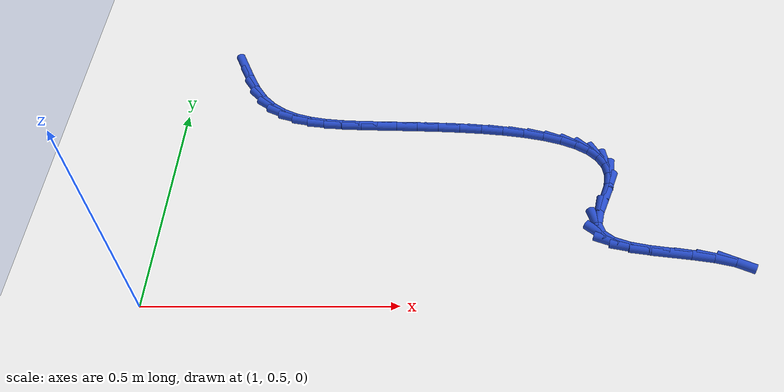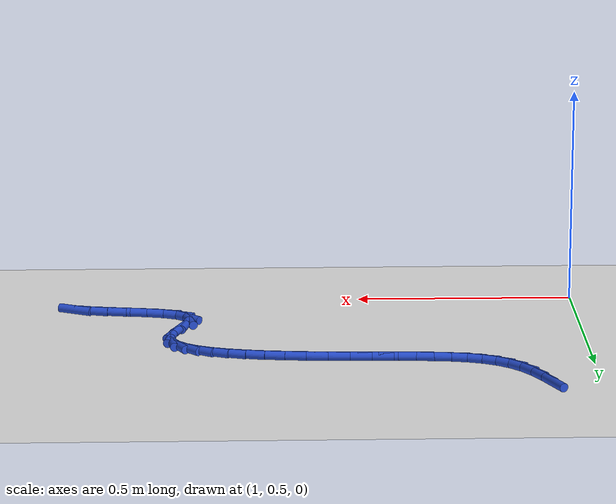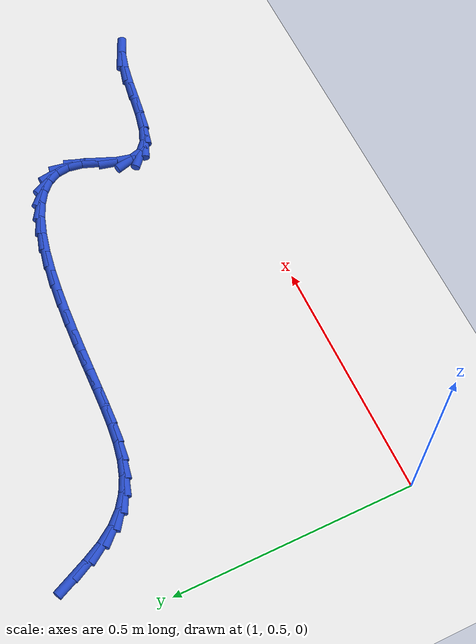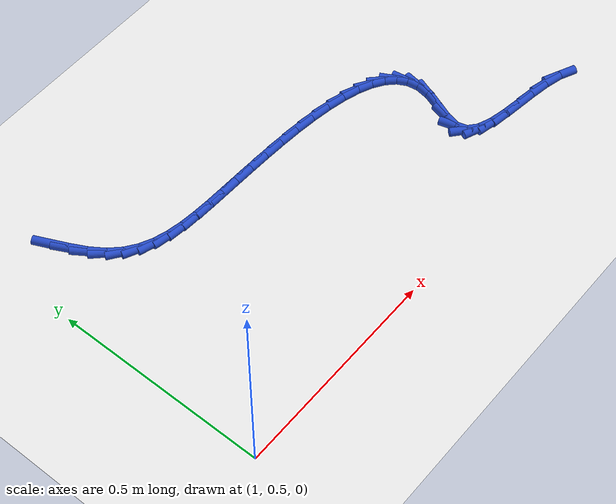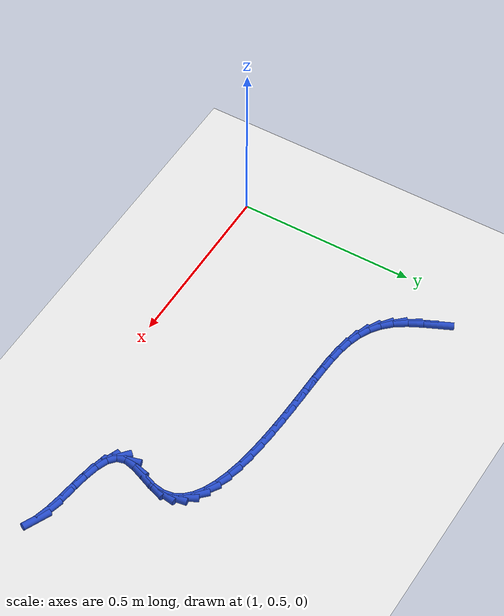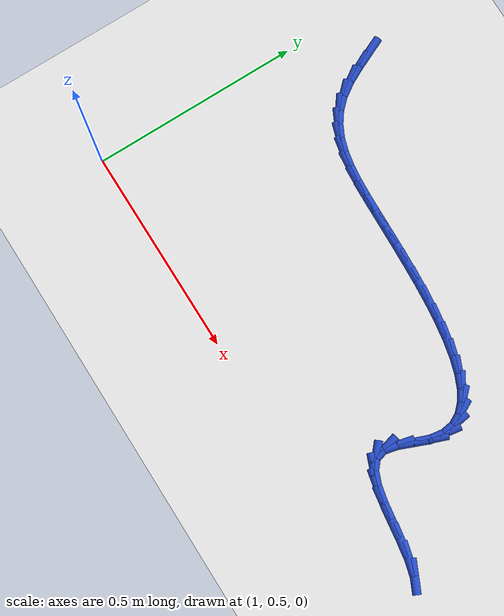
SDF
<sdf version="1.6">
 <world name="default">
  <model name="ground_plane">
   <static>1</static>
   <link name="link">
    <collision name="collision">
     <geometry><plane><normal>0 0 1</normal><size>100 100</size></plane></geometry>
     <surface><friction><ode><mu>100</mu><mu2>50</mu2></ode></friction></surface>
    </collision>
    <visual name="visual">
     <cast_shadows>0</cast_shadows>
     <geometry><plane><normal>0 0 1</normal><size>100 100</size></plane></geometry>
     <material>
      <script><uri>file://media/materials/scripts/gazebo.material</uri><name>Gazebo/WhiteGlow</name></script>
     </material>
    </visual>
   </link>
  </model>
  <model name="line">
   <link name="link_52">
    <pose>1.1068296771240524 1.1535958515805331 0.01 0 1.57 -1.1399647260535226</pose>
    <collision name="collision">
     <geometry><cylinder><radius>0.01</radius><length>0.08</length></cylinder></geometry>
    </collision>
    <visual name="visual">
     <material>
      <script><name>Gazebo/Blue</name><uri>file://media/materials/scripts/gazebo.material</uri></script>
     </material>
     <geometry><cylinder><radius>0.01</radius><length>0.08</length></cylinder></geometry>
    </visual>
   </link>
   <link name="link_53">
    <pose>1.124045474171045 1.1161399089975614 0.01 0 1.57 -1.0946465420658669</pose>
    <collision name="collision">
     <geometry><cylinder><radius>0.01</radius><length>0.08</length></cylinder></geometry>
    </collision>
    <visual name="visual">
     <material>
      <script><name>Gazebo/Blue</name><uri>file://media/materials/scripts/gazebo.material</uri></script>
     </material>
     <geometry><cylinder><radius>0.01</radius><length>0.08</length></cylinder></geometry>
    </visual>
   </link>
   <link name="link_54">
    <pose>1.143174898259593 1.079047746496133 0.01 0 1.57 -0.9745898468676989</pose>
    <collision name="collision">
     <geometry><cylinder><radius>0.01</radius><length>0.08</length></cylinder></geometry>
    </collision>
    <visual name="visual">
     <material>
      <script><name>Gazebo/Blue</name><uri>file://media/materials/scripts/gazebo.material</uri></script>
     </material>
     <geometry><cylinder><radius>0.01</radius><length>0.08</length></cylinder></geometry>
    </visual>
   </link>
   <link name="link_55">
    <pose>1.1648346772784155 1.0471285763058709 0.01 0 1.57 -0.803147359494654</pose>
    <collision name="collision">
     <geometry><cylinder><radius>0.01</radius><length>0.08</length></cylinder></geometry>
    </collision>
    <visual name="visual">
     <material>
      <script><name>Gazebo/Blue</name><uri>file://media/materials/scripts/gazebo.material</uri></script>
     </material>
     <geometry><cylinder><radius>0.01</radius><length>0.08</length></cylinder></geometry>
    </visual>
   </link>
   <link name="link_56">
    <pose>1.1892595998306017 1.0218208464468965 0.01 0 1.57 -0.6217404524278279</pose>
    <collision name="collision">
     <geometry><cylinder><radius>0.01</radius><length>0.08</length></cylinder></geometry>
    </collision>
    <visual name="visual">
     <material>
      <script><name>Gazebo/Blue</name><uri>file://media/materials/scripts/gazebo.material</uri></script>
     </material>
     <geometry><cylinder><radius>0.01</radius><length>0.08</length></cylinder></geometry>
    </visual>
   </link>
   <link name="link_57">
    <pose>1.2164336502059765 1.0023495583666935 0.01 0 1.57 -0.4501037662684579</pose>
    <collision name="collision">
     <geometry><cylinder><radius>0.01</radius><length>0.08</length></cylinder></geometry>
    </collision>
    <visual name="visual">
     <material>
      <script><name>Gazebo/Blue</name><uri>file://media/materials/scripts/gazebo.material</uri></script>
     </material>
     <geometry><cylinder><radius>0.01</radius><length>0.08</length></cylinder></geometry>
    </visual>
   </link>
   <link name="link_58">
    <pose>1.2463364308023117 0.987901041594314 0.01 0 1.57 -0.30423761250381726</pose>
    <collision name="collision">
     <geometry><cylinder><radius>0.01</radius><length>0.08</length></cylinder></geometry>
    </collision>
    <visual name="visual">
     <material>
      <script><name>Gazebo/Blue</name><uri>file://media/materials/scripts/gazebo.material</uri></script>
     </material>
     <geometry><cylinder><radius>0.01</radius><length>0.08</length></cylinder></geometry>
    </visual>
   </link>
   <link name="link_59">
    <pose>1.2789475440173814 0.9776616256588098 0.01 0 1.57 -0.191509705843064</pose>
    <collision name="collision">
     <geometry><cylinder><radius>0.01</radius><length>0.08</length></cylinder></geometry>
    </collision>
    <visual name="visual">
     <material>
      <script><name>Gazebo/Blue</name><uri>file://media/materials/scripts/gazebo.material</uri></script>
     </material>
     <geometry><cylinder><radius>0.01</radius><length>0.08</length></cylinder></geometry>
    </visual>
   </link>
   <link name="link_60">
    <pose>1.3142465922489568 0.970817640089233 0.01 0 1.57 -0.11179447274638207</pose>
    <collision name="collision">
     <geometry><cylinder><radius>0.01</radius><length>0.08</length></cylinder></geometry>
    </collision>
    <visual name="visual">
     <material>
      <script><name>Gazebo/Blue</name><uri>file://media/materials/scripts/gazebo.material</uri></script>
     </material>
     <geometry><cylinder><radius>0.01</radius><length>0.08</length></cylinder></geometry>
    </visual>
   </link>
   <link name="link_61">
    <pose>1.352213177894812 0.9665554144146358 0.01 0 1.57 -0.06133413996050201</pose>
    <collision name="collision">
     <geometry><cylinder><radius>0.01</radius><length>0.08</length></cylinder></geometry>
    </collision>
    <visual name="visual">
     <material>
      <script><name>Gazebo/Blue</name><uri>file://media/materials/scripts/gazebo.material</uri></script>
     </material>
     <geometry><cylinder><radius>0.01</radius><length>0.08</length></cylinder></geometry>
    </visual>
   </link>
   <link name="link_62">
    <pose>1.3928269033527187 0.9640612781640698 0.01 0 1.57 -0.03559320967096441</pose>
    <collision name="collision">
     <geometry><cylinder><radius>0.01</radius><length>0.08</length></cylinder></geometry>
    </collision>
    <visual name="visual">
     <material>
      <script><name>Gazebo/Blue</name><uri>file://media/materials/scripts/gazebo.material</uri></script>
     </material>
     <geometry><cylinder><radius>0.01</radius><length>0.08</length></cylinder></geometry>
    </visual>
   </link>
   <link name="link_63">
    <pose>1.4360673710204508 0.9625215608665874 0.01 0 1.57 -0.02899583581267326</pose>
    <collision name="collision">
     <geometry><cylinder><radius>0.01</radius><length>0.08</length></cylinder></geometry>
    </collision>
    <visual name="visual">
     <material>
      <script><name>Gazebo/Blue</name><uri>file://media/materials/scripts/gazebo.material</uri></script>
     </material>
     <geometry><cylinder><radius>0.01</radius><length>0.08</length></cylinder></geometry>
    </visual>
   </link>
   <link name="link_64">
    <pose>1.481798892920301 0.9611951654191987 0.01 0 1.57 -0.03181918137966791</pose>
    <collision name="collision">
     <geometry><cylinder><radius>0.01</radius><length>0.08</length></cylinder></geometry>
    </collision>
    <visual name="visual">
     <material>
      <script><name>Gazebo/Blue</name><uri>file://media/materials/scripts/gazebo.material</uri></script>
     </material>
     <geometry><cylinder><radius>0.01</radius><length>0.08</length></cylinder></geometry>
    </visual>
   </link>
   <link name="link_65">
    <pose>1.5293443825058572 0.9596817960856887 0.01 0 1.57 -0.0412079252949086</pose>
    <collision name="collision">
     <geometry><cylinder><radius>0.01</radius><length>0.08</length></cylinder></geometry>
    </collision>
    <visual name="visual">
     <material>
      <script><name>Gazebo/Blue</name><uri>file://media/materials/scripts/gazebo.material</uri></script>
     </material>
     <geometry><cylinder><radius>0.01</radius><length>0.08</length></cylinder></geometry>
    </visual>
   </link>
   <link name="link_66">
    <pose>1.577867972358921 0.9576811070396687 0.01 0 1.57 -0.057233134213137825</pose>
    <collision name="collision">
     <geometry><cylinder><radius>0.01</radius><length>0.08</length></cylinder></geometry>
    </collision>
    <visual name="visual">
     <material>
      <script><name>Gazebo/Blue</name><uri>file://media/materials/scripts/gazebo.material</uri></script>
     </material>
     <geometry><cylinder><radius>0.01</radius><length>0.08</length></cylinder></geometry>
    </visual>
   </link>
   <link name="link_67">
    <pose>1.62653377438693 0.9548927654689172 0.01 0 1.57 -0.08062855713013198</pose>
    <collision name="collision">
     <geometry><cylinder><radius>0.01</radius><length>0.08</length></cylinder></geometry>
    </collision>
    <visual name="visual">
     <material>
      <script><name>Gazebo/Blue</name><uri>file://media/materials/scripts/gazebo.material</uri></script>
     </material>
     <geometry><cylinder><radius>0.01</radius><length>0.08</length></cylinder></geometry>
    </visual>
   </link>
   <link name="link_68">
    <pose>1.674505900497321 0.9510164385612124 0.01 0 1.57 -0.11287635162903507</pose>
    <collision name="collision">
     <geometry><cylinder><radius>0.01</radius><length>0.08</length></cylinder></geometry>
    </collision>
    <visual name="visual">
     <material>
      <script><name>Gazebo/Blue</name><uri>file://media/materials/scripts/gazebo.material</uri></script>
     </material>
     <geometry><cylinder><radius>0.01</radius><length>0.08</length></cylinder></geometry>
    </visual>
   </link>
   <link name="link_69">
    <pose>1.7209484625975309 0.9457517935043331 0.01 0 1.57 -0.15646357779761397</pose>
    <collision name="collision">
     <geometry><cylinder><radius>0.01</radius><length>0.08</length></cylinder></geometry>
    </collision>
    <visual name="visual">
     <material>
      <script><name>Gazebo/Blue</name><uri>file://media/materials/scripts/gazebo.material</uri></script>
     </material>
     <geometry><cylinder><radius>0.01</radius><length>0.08</length></cylinder></geometry>
    </visual>
   </link>
   <link name="link_70">
    <pose>1.7650255725949981 0.9387984974860576 0.01 0 1.57 -0.21537416284267957</pose>
    <collision name="collision">
     <geometry><cylinder><radius>0.01</radius><length>0.08</length></cylinder></geometry>
    </collision>
    <visual name="visual">
     <material>
      <script><name>Gazebo/Blue</name><uri>file://media/materials/scripts/gazebo.material</uri></script>
     </material>
     <geometry><cylinder><radius>0.01</radius><length>0.08</length></cylinder></geometry>
    </visual>
   </link>
   <link name="link_71">
    <pose>1.805901342397158 0.9298562176941642 0.01 0 1.57 -0.295934327029937</pose>
    <collision name="collision">
     <geometry><cylinder><radius>0.01</radius><length>0.08</length></cylinder></geometry>
    </collision>
    <visual name="visual">
     <material>
      <script><name>Gazebo/Blue</name><uri>file://media/materials/scripts/gazebo.material</uri></script>
     </material>
     <geometry><cylinder><radius>0.01</radius><length>0.08</length></cylinder></geometry>
    </visual>
   </link>
   <link name="link_72">
    <pose>1.8427398839114497 0.9186246213164315 0.01 0 1.57 -0.40810585983567776</pose>
    <collision name="collision">
     <geometry><cylinder><radius>0.01</radius><length>0.08</length></cylinder></geometry>
    </collision>
    <visual name="visual">
     <material>
      <script><name>Gazebo/Blue</name><uri>file://media/materials/scripts/gazebo.material</uri></script>
     </material>
     <geometry><cylinder><radius>0.01</radius><length>0.08</length></cylinder></geometry>
    </visual>
   </link>
   <link name="link_73">
    <pose>1.8747053090453087 0.904803375540638 0.01 0 1.57 -0.5667996050922918</pose>
    <collision name="collision">
     <geometry><cylinder><radius>0.01</radius><length>0.08</length></cylinder></geometry>
    </collision>
    <visual name="visual">
     <material>
      <script><name>Gazebo/Blue</name><uri>file://media/materials/scripts/gazebo.material</uri></script>
     </material>
     <geometry><cylinder><radius>0.01</radius><length>0.08</length></cylinder></geometry>
    </visual>
   </link>
   <link name="link_74">
    <pose>1.9009617297061736 0.8880921475545621 0.01 0 1.57 -0.7901948996929119</pose>
    <collision name="collision">
     <geometry><cylinder><radius>0.01</radius><length>0.08</length></cylinder></geometry>
    </collision>
    <visual name="visual">
     <material>
      <script><name>Gazebo/Blue</name><uri>file://media/materials/scripts/gazebo.material</uri></script>
     </material>
     <geometry><cylinder><radius>0.01</radius><length>0.08</length></cylinder></geometry>
    </visual>
   </link>
   <link name="link_75">
    <pose>1.9206732578014813 0.8681906045459826 0.01 0 1.57 -1.085680287643788</pose>
    <collision name="collision">
     <geometry><cylinder><radius>0.01</radius><length>0.08</length></cylinder></geometry>
    </collision>
    <visual name="visual">
     <material>
      <script><name>Gazebo/Blue</name><uri>file://media/materials/scripts/gazebo.material</uri></script>
     </material>
     <geometry><cylinder><radius>0.01</radius><length>0.08</length></cylinder></geometry>
    </visual>
   </link>
   <link name="link_76">
    <pose>1.9330040052386683 0.8447984137026773 0.01 0 1.57 -1.4205897400191951</pose>
    <collision name="collision">
     <geometry><cylinder><radius>0.01</radius><length>0.08</length></cylinder></geometry>
    </collision>
    <visual name="visual">
     <material>
      <script><name>Gazebo/Blue</name><uri>file://media/materials/scripts/gazebo.material</uri></script>
     </material>
     <geometry><cylinder><radius>0.01</radius><length>0.08</length></cylinder></geometry>
    </visual>
   </link>
   <link name="link_77">
    <pose>1.9371180839251725 0.8176152422124251 0.01 0 1.57 1.4141911830292309</pose>
    <collision name="collision">
     <geometry><cylinder><radius>0.01</radius><length>0.08</length></cylinder></geometry>
    </collision>
    <visual name="visual">
     <material>
      <script><name>Gazebo/Blue</name><uri>file://media/materials/scripts/gazebo.material</uri></script>
     </material>
     <geometry><cylinder><radius>0.01</radius><length>0.08</length></cylinder></geometry>
    </visual>
   </link>
   <link name="link_78">
    <pose>1.9321799264135198 0.7863409078249171 0.01 0 1.57 1.2125164082445472</pose>
    <collision name="collision">
     <geometry><cylinder><radius>0.01</radius><length>0.08</length></cylinder></geometry>
    </collision>
    <visual name="visual">
     <material>
      <script><name>Gazebo/Blue</name><uri>file://media/materials/scripts/gazebo.material</uri></script>
     </material>
     <geometry><cylinder><radius>0.01</radius><length>0.08</length></cylinder></geometry>
    </visual>
   </link>
   <link name="link_79">
    <pose>1.919139128137144 0.7515134682872507 0.01 0 1.57 1.1852236447687536</pose>
    <collision name="collision">
     <geometry><cylinder><radius>0.01</radius><length>0.08</length></cylinder></geometry>
    </collision>
    <visual name="visual">
     <material>
      <script><name>Gazebo/Blue</name><uri>file://media/materials/scripts/gazebo.material</uri></script>
     </material>
     <geometry><cylinder><radius>0.01</radius><length>0.08</length></cylinder></geometry>
    </visual>
   </link>
   <link name="link_80">
    <pose>1.9049175260118971 0.716475303427305 0.01 0 1.57 1.343838760808624</pose>
    <collision name="collision">
     <geometry><cylinder><radius>0.01</radius><length>0.08</length></cylinder></geometry>
    </collision>
    <visual name="visual">
     <material>
      <script><name>Gazebo/Blue</name><uri>file://media/materials/scripts/gazebo.material</uri></script>
     </material>
     <geometry><cylinder><radius>0.01</radius><length>0.08</length></cylinder></geometry>
    </visual>
   </link>
   <link name="link_81">
    <pose>1.8976844244732238 0.6851545531632973 0.01 0 1.57 -1.3001773517629749</pose>
    <collision name="collision">
     <geometry><cylinder><radius>0.01</radius><length>0.08</length></cylinder></geometry>
    </collision>
    <visual name="visual">
     <material>
      <script><name>Gazebo/Blue</name><uri>file://media/materials/scripts/gazebo.material</uri></script>
     </material>
     <geometry><cylinder><radius>0.01</radius><length>0.08</length></cylinder></geometry>
    </visual>
   </link>
   <link name="link_82">
    <pose>1.9044153847363772 0.6608922512643634 0.01 0 1.57 -0.707640985548467</pose>
    <collision name="collision">
     <geometry><cylinder><radius>0.01</radius><length>0.08</length></cylinder></geometry>
    </collision>
    <visual name="visual">
     <material>
      <script><name>Gazebo/Blue</name><uri>file://media/materials/scripts/gazebo.material</uri></script>
     </material>
     <geometry><cylinder><radius>0.01</radius><length>0.08</length></cylinder></geometry>
    </visual>
   </link>
   <link name="link_83">
    <pose>1.9248062977462892 0.6434491479791191 0.01 0 1.57 -0.37525118180244893</pose>
    <collision name="collision">
     <geometry><cylinder><radius>0.01</radius><length>0.08</length></cylinder></geometry>
    </collision>
    <visual name="visual">
     <material>
      <script><name>Gazebo/Blue</name><uri>file://media/materials/scripts/gazebo.material</uri></script>
     </material>
     <geometry><cylinder><radius>0.01</radius><length>0.08</length></cylinder></geometry>
    </visual>
   </link>
   <link name="link_84">
    <pose>1.9558092839322263 0.6312365538155698 0.01 0 1.57 -0.21876477993075943</pose>
    <collision name="collision">
     <geometry><cylinder><radius>0.01</radius><length>0.08</length></cylinder></geometry>
    </collision>
    <visual name="visual">
     <material>
      <script><name>Gazebo/Blue</name><uri>file://media/materials/scripts/gazebo.material</uri></script>
     </material>
     <geometry><cylinder><radius>0.01</radius><length>0.08</length></cylinder></geometry>
    </visual>
   </link>
   <link name="link_85">
    <pose>1.994371438790331 0.6226633079218096 0.01 0 1.57 -0.15036099702550895</pose>
    <collision name="collision">
     <geometry><cylinder><radius>0.01</radius><length>0.08</length></cylinder></geometry>
    </collision>
    <visual name="visual">
     <material>
      <script><name>Gazebo/Blue</name><uri>file://media/materials/scripts/gazebo.material</uri></script>
     </material>
     <geometry><cylinder><radius>0.01</radius><length>0.08</length></cylinder></geometry>
    </visual>
   </link>
   <link name="link_86">
    <pose>2.0374398578167408 0.6161382494459328 0.01 0 1.57 -0.1354589205520616</pose>
    <collision name="collision">
     <geometry><cylinder><radius>0.01</radius><length>0.08</length></cylinder></geometry>
    </collision>
    <visual name="visual">
     <material>
      <script><name>Gazebo/Blue</name><uri>file://media/materials/scripts/gazebo.material</uri></script>
     </material>
     <geometry><cylinder><radius>0.01</radius><length>0.08</length></cylinder></geometry>
    </visual>
   </link>
   <link name="link_87">
    <pose>2.081961636507597 0.610070217536033 0.01 0 1.57 -0.16624699301828738</pose>
    <collision name="collision">
     <geometry><cylinder><radius>0.01</radius><length>0.08</length></cylinder></geometry>
    </collision>
    <visual name="visual">
     <material>
      <script><name>Gazebo/Blue</name><uri>file://media/materials/scripts/gazebo.material</uri></script>
     </material>
     <geometry><cylinder><radius>0.01</radius><length>0.08</length></cylinder></geometry>
    </visual>
   </link>
   <link name="link_88">
    <pose>2.124883870359039 0.6028680513402048 0.01 0 1.57 -0.25381280462859684</pose>
    <collision name="collision">
     <geometry><cylinder><radius>0.01</radius><length>0.08</length></cylinder></geometry>
    </collision>
    <visual name="visual">
     <material>
      <script><name>Gazebo/Blue</name><uri>file://media/materials/scripts/gazebo.material</uri></script>
     </material>
     <geometry><cylinder><radius>0.01</radius><length>0.08</length></cylinder></geometry>
    </visual>
   </link>
   <link name="link_89">
    <pose>2.1631536548672075 0.5929405900065421 0.01 0 1.57 -0.4361035689409837</pose>
    <collision name="collision">
     <geometry><cylinder><radius>0.01</radius><length>0.08</length></cylinder></geometry>
    </collision>
    <visual name="visual">
     <material>
      <script><name>Gazebo/Blue</name><uri>file://media/materials/scripts/gazebo.material</uri></script>
     </material>
     <geometry><cylinder><radius>0.01</radius><length>0.08</length></cylinder></geometry>
    </visual>
   </link>
  </model>
 </world>
</sdf>
